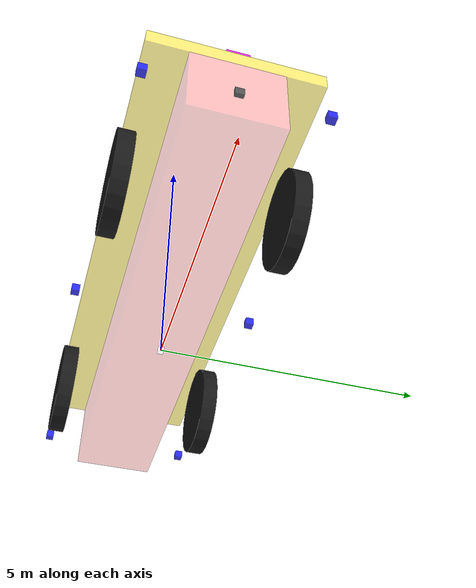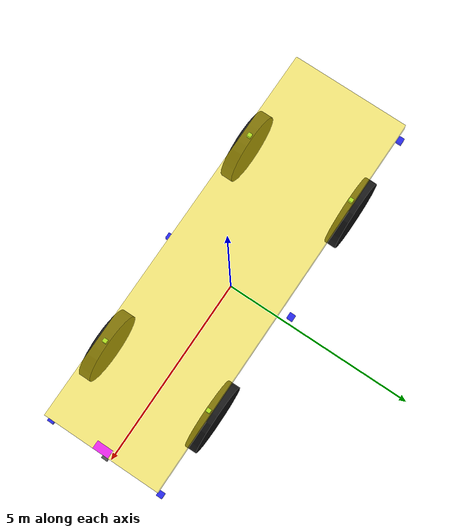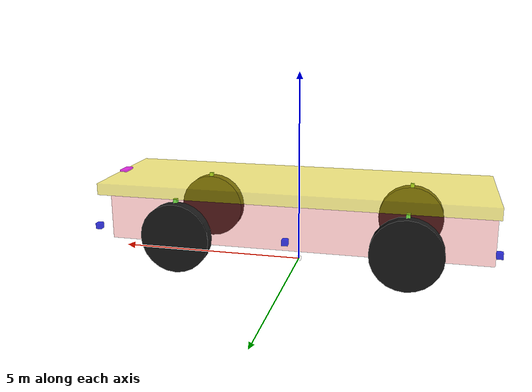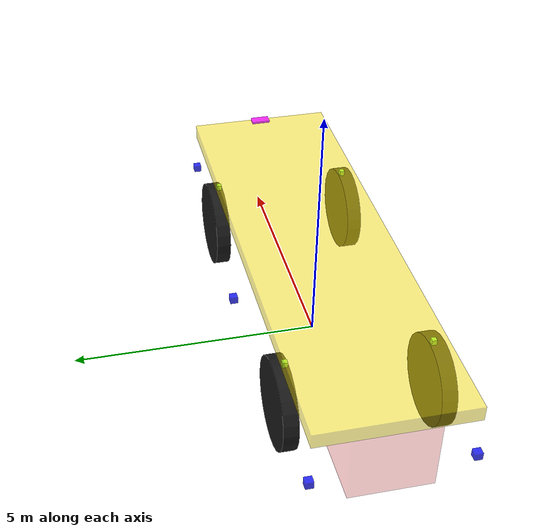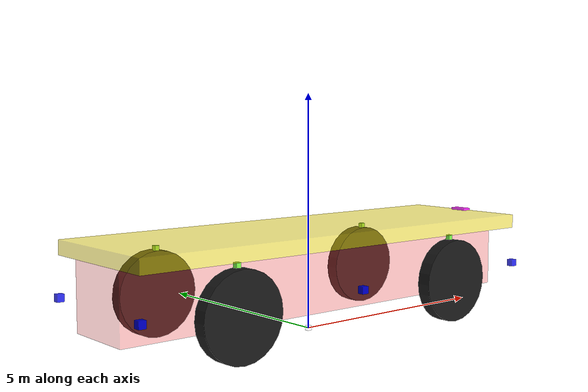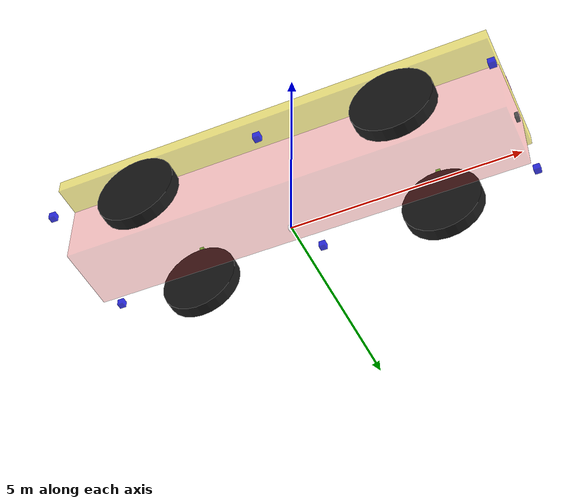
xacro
<?xml version="1.0"?>

<!-- Robot name -->
<robot name="agv" xmlns:xacro="http://www.ros.org/wiki/xacro">

<!-- Included URDF Files -->
<xacro:include filename="$(find agv_gazebo)/gazebo/agv_at_iri.gazebo" />
<xacro:include filename="$(find arts_description)/urdf/arts.xacro" />

<!-- user input dimensions  ( DEBUG: all mass values have been divided by 100 )  -->
<xacro:property name="robot"    value="agv" />
<xacro:property name="pi"       value="3.141592" />
<xacro:property name="body_length"   value="10." />
<xacro:property name="body_width"    value="1.6" />
<xacro:property name="body_height"   value="1.4" />
<xacro:property name="body_mass"   value="1000." />
<xacro:property name="platform_length"   value="${body_length}" />
<xacro:property name="platform_width"   value="3." />
<xacro:property name="platform_height"   value=".3" />
<xacro:property name="platform_mass"   value="500." />
<xacro:property name="wheel_width"    value="0.05" />
<xacro:property name="wheel_width_vis"    value="0.3" />
<xacro:property name="wheel_radius"   value="0.9" />
<xacro:property name="wheel_mass"   value="100." />
<xacro:property name="wheel_hinge_width"   value="0.1" />
<xacro:property name="wheel_hinge_mass"   value="10." />
<xacro:property name="lidar_mass"   value="1." />
<xacro:property name="lidar_side"   value="0.15" />

<!-- TNO definitions -->

<!-- derived dimensions -->
<xacro:property name="wheel_hinge_height"   value="${wheel_radius+0.1}" />
<xacro:property name="body_floor_clearance"   value="${wheel_radius+wheel_hinge_height-body_height}" />

<!-- ~~~~~~~~~~~~~~~~~~~~~~~ BODY AND PLATFORM ~~~~~~~~~~~~~~~~~~~~~~~~~~~~~~~~~~~~~~~~ -->

<!-- AGV Footprint Link (AGV footprint on ground)-->
<link name="${robot}_footprint">
    <visual>
        <origin xyz="0 0 0" rpy="0 0 0"/>
        <geometry>
            <box size="0.1 0.1 0.1"/>
        </geometry>
        <material name="white">
            <color rgba="1 1 1 0.1"/>
        </material>
    </visual>

<!--    Comment collision below for normal mode: wheels on te ground -->
<!--    Uncomment collision below for "Podium" mode: Useful to check wheel control without moving agv -->
</link>

<!-- AGV Base Link (AGV body)-->
<joint name="${robot}_footprint_2_base" type="fixed" >
    <parent link="${robot}_footprint"/>
    <child link="${robot}_base_link"/>
    <origin xyz="0 0 ${body_floor_clearance+0.5*body_height}" rpy="0 0 0"/>
</joint>
<link name="${robot}_base_link">
    <visual>
        <origin xyz="0 0 0" rpy="0 0 0"/>
        <geometry>
            <box size="${body_length} ${body_width} ${body_height}"/>
        </geometry>
        <material name="reddish">
            <color rgba="1 0.2 0.2 0.3"/>
        </material>
    </visual>

    <collision>
        <origin xyz="0 0 0" rpy="0 0 0"/>
        <geometry>
            <box size="${body_length} ${body_width} ${body_height}"/>
        </geometry>
    </collision>

    <inertial>
        <mass value="${body_mass}" />
        <origin xyz="0 0 0" rpy="0 0 0"/>
        <inertia ixx="${0.083*body_mass*(body_width*body_width+body_height*body_height)}"
                 ixy="0.0"
                 ixz="0.0"
                 iyy="${0.083*body_mass*(body_length*body_length+body_height*body_height)}"
                 iyz="0.0"
                 izz="${0.083*body_mass*(body_length*body_length+body_width*body_width)}" />
    </inertial>
</link>

<!-- AGV top platform-->
<joint name="${robot}_base_2_platform" type="fixed" >
    <parent link="${robot}_base_link"/>
    <child link="${robot}_platform"/>
    <origin xyz="0 0 ${0.5*body_height + 0.5*platform_height}" rpy="0 0 0"/>
</joint>
<link name="${robot}_platform">
    <visual>
        <origin xyz="0 0 0" rpy="0 0 0"/>
        <geometry>
            <box size="${platform_length} ${platform_width} ${platform_height}"/>
        </geometry>
        <material name="yellow">
            <color rgba="1.0 0.9 0.0 0.5"/>
        </material>
    </visual>

    <collision>
        <origin xyz="0 0 0" rpy="0 0 0"/>
        <geometry>
            <box size="${platform_length} ${platform_width} ${platform_height}"/>
        </geometry>
    </collision>

    <inertial>
        <mass value="${platform_mass}" />
        <origin xyz="0 0 0" rpy="0 0 0"/>
        <inertia ixx="${0.083*platform_mass*(platform_width*platform_width+platform_height*platform_height)}"
                    ixy="0.0"
                    ixz="0.0"
                    iyy="${0.083*platform_mass*(platform_length*platform_length+platform_height*platform_height)}"
                    iyz="0.0"
                    izz="${0.083*platform_mass*(platform_length*platform_length+platform_width*platform_width)}" />
    </inertial>
</link>

<!-- AGV forward marker -->
<joint name="${robot}_platform_2_fwd_mark" type="fixed" >
    <parent link="${robot}_platform"/>
    <child link="${robot}_fwd_mark"/>
    <origin xyz="${0.5*platform_length-0.1} 0 ${0.5*platform_height+0.025}" rpy="0 0 0"/>
</joint>
<link name="${robot}_fwd_mark">
    <visual>
        <origin xyz="0 0 0" rpy="0 0 0"/>
        <geometry>
            <box size="0.2 0.4 0.05"/>
        </geometry>
        <material name="purple">
            <color rgba="1.0 0.0 1.0 0.8"/>
        </material>
    </visual>

    <inertial>
        <mass value="0.01" />
        <origin xyz="0 0 0" rpy="0 0 0"/>
        <inertia ixx="0.01"
                ixy="0.0"
                ixz="0.0"
                iyy="0.01"
                iyz="0.0"
                izz="0.01" />
    </inertial>
</link>

<!-- ~~~~~~~~~~~~~~~~~~~~~~~~~~~~~~ WHEELS ~~~~~~~~~~~~~~~~~~~~~~~~~~~~~~~~~~~~~~~~~~~~ -->

<!-- front left hinge-->
<joint name="${robot}_platform_2_fl_hinge" type="revolute" >
    <parent link="${robot}_platform"/>
    <child link="${robot}_fl_hinge"/>
    <axis xyz="0 0 1"/>
    <limit effort="100000." lower="${-0.3*pi}" upper="${0.3*pi}" velocity="1."/>
    <dynamics damping="100."/>
    <origin xyz="${0.4*platform_length-wheel_radius-0.2} ${0.5*platform_width-0.5*wheel_hinge_width-wheel_width} ${-0.5*platform_height-0.5*wheel_hinge_height}" rpy="0 0 0"/>
</joint>
<link name="${robot}_fl_hinge">
    <visual>
        <origin xyz="0 0 0" rpy="0 0 0"/>
        <geometry>
            <box size="${wheel_hinge_width} ${wheel_hinge_width} ${wheel_hinge_height}"/>
        </geometry>
        <material name="green2">
            <color rgba="0.5 1 0.3 1"/>
        </material>
    </visual>

    <inertial>
        <mass value="${wheel_hinge_mass}" />
        <origin xyz="0 0 0" rpy="0 0 0"/>
        <inertia ixx="${0.083*wheel_hinge_mass*(wheel_hinge_width*wheel_hinge_width+wheel_hinge_height*wheel_hinge_height)}"
                    ixy="0.0"
                    ixz="0.0"
                    iyy="${0.083*wheel_hinge_mass*(wheel_hinge_width*wheel_hinge_width+wheel_hinge_height*wheel_hinge_height)}"
                    iyz="0.0"
                    izz="${0.083*wheel_hinge_mass*(wheel_hinge_width*wheel_hinge_width+wheel_hinge_width*wheel_hinge_width)}" />
    </inertial>

</link>

<!-- front left wheel-->
<joint name="${robot}_fl_hinge_2_wheel" type="continuous" >
    <parent link="${robot}_fl_hinge"/>
    <child link="${robot}_fl_wheel"/>
    <axis xyz="0 0 1"/>
    <limit effort="100000." velocity="${pi}"/>
    <dynamics damping="0.2"/>
    <origin xyz="0 ${0.5*wheel_hinge_width+0.5*wheel_width} ${-0.5*wheel_hinge_height}" rpy="${-0.5*pi} 0 0"/>
</joint>
<link name="${robot}_fl_wheel">
    <visual>
        <origin xyz="0 0 0" rpy="0 0 0"/>
        <geometry>
            <cylinder length="${wheel_width_vis}" radius="${wheel_radius}"/>
        </geometry>
        <material name="grey">
            <color rgba="0.1 0.1 0.1 1"/>
        </material>
    </visual>

    <collision>
        <origin xyz="0 0 0" rpy="0 0 0"/>
        <geometry>
            <cylinder length="${wheel_width}" radius="${wheel_radius}"/>
        </geometry>
    </collision>

    <inertial>
        <mass value="${wheel_mass}" />
        <origin xyz="0 0 0" rpy="0 0 0"/>
        <inertia ixx="${0.083*wheel_mass*(3*wheel_radius*wheel_radius+wheel_width*wheel_width)}"
                    ixy="0.0"
                    ixz="0.0"
                    iyy="${0.083*wheel_mass*(3*wheel_radius*wheel_radius+wheel_width*wheel_width)}"
                    iyz="0.0"
                    izz="${0.5*wheel_mass*wheel_radius*wheel_radius}" />
    </inertial>
</link>

<!-- front right hinge-->
<joint name="${robot}_platform_2_fr_hinge" type="revolute" >
    <parent link="${robot}_platform"/>
    <child link="${robot}_fr_hinge"/>
    <axis xyz="0 0 1"/>
    <limit effort="100000." lower="${-0.3*pi}" upper="${0.3*pi}" velocity="1."/>
    <dynamics damping="100."/>
    <origin xyz="${0.4*platform_length-wheel_radius-0.2} ${-0.5*platform_width+0.5*wheel_hinge_width+wheel_width} ${-0.5*platform_height-0.5*wheel_hinge_height}" rpy="0 0 0"/>
</joint>
<link name="${robot}_fr_hinge">
    <visual>
        <origin xyz="0 0 0" rpy="0 0 0"/>
        <geometry>
            <box size="${wheel_hinge_width} ${wheel_hinge_width} ${wheel_hinge_height}"/>
        </geometry>
        <material name="green2">
            <color rgba="0.5 1 0.3 1"/>
        </material>
    </visual>

    <inertial>
        <mass value="${wheel_hinge_mass}" />
        <origin xyz="0 0 0" rpy="0 0 0"/>
        <inertia ixx="${0.083*wheel_hinge_mass*(wheel_hinge_width*wheel_hinge_width+wheel_hinge_height*wheel_hinge_height)}"
                    ixy="0.0"
                    ixz="0.0"
                    iyy="${0.083*wheel_hinge_mass*(wheel_hinge_width*wheel_hinge_width+wheel_hinge_height*wheel_hinge_height)}"
                    iyz="0.0"
                    izz="${0.083*wheel_hinge_mass*(wheel_hinge_width*wheel_hinge_width+wheel_hinge_width*wheel_hinge_width)}" />
    </inertial>

</link>

<!-- front right wheel-->
<joint name="${robot}_fr_hinge_2_wheel" type="continuous" >
    <parent link="${robot}_fr_hinge"/>
    <child link="${robot}_fr_wheel"/>
    <axis xyz="0 0 1"/>
    <limit effort="100000." velocity="${pi}"/>
    <dynamics damping="0.2"/>
    <origin xyz="0 ${-0.5*wheel_hinge_width-0.5*wheel_width} ${-0.5*wheel_hinge_height}" rpy="${-0.5*pi} 0 0"/>
</joint>
<link name="${robot}_fr_wheel">
    <visual>
        <origin xyz="0 0 0" rpy="0 0 0"/>
        <geometry>
            <cylinder length="${wheel_width_vis}" radius="${wheel_radius}"/>
        </geometry>
        <material name="grey">
            <color rgba="0.1 0.1 0.1 1"/>
        </material>
    </visual>

    <collision>
        <origin xyz="0 0 0" rpy="0 0 0"/>
        <geometry>
            <cylinder length="${wheel_width}" radius="${wheel_radius}"/>
        </geometry>
    </collision>

    <inertial>
        <mass value="${wheel_mass}" />
        <origin xyz="0 0 0" rpy="0 0 0"/>
        <inertia ixx="${0.083*wheel_mass*(3*wheel_radius*wheel_radius+wheel_width*wheel_width)}"
                    ixy="0.0"
                    ixz="0.0"
                    iyy="${0.083*wheel_mass*(3*wheel_radius*wheel_radius+wheel_width*wheel_width)}"
                    iyz="0.0"
                    izz="${0.5*wheel_mass*wheel_radius*wheel_radius}" />
    </inertial>
</link>

<!-- back left hinge-->
<joint name="${robot}_platform_2_bl_hinge" type="revolute" >
    <parent link="${robot}_platform"/>
    <child link="${robot}_bl_hinge"/>
    <axis xyz="0 0 1"/>
    <limit effort="100000." lower="${-0.3*pi}" upper="${0.3*pi}" velocity="1."/>
    <dynamics damping="100."/>
    <origin xyz="${-0.4*platform_length+wheel_radius+0.2} ${0.5*platform_width-0.5*wheel_hinge_width-wheel_width} ${-0.5*platform_height-0.5*wheel_hinge_height}" rpy="0 0 0"/>
</joint>
<link name="${robot}_bl_hinge">
    <visual>
        <origin xyz="0 0 0" rpy="0 0 0"/>
        <geometry>
            <box size="${wheel_hinge_width} ${wheel_hinge_width} ${wheel_hinge_height}"/>
        </geometry>
        <material name="green2">
            <color rgba="0.5 1 0.3 1"/>
        </material>
    </visual>

    <inertial>
        <mass value="${wheel_hinge_mass}" />
        <origin xyz="0 0 0" rpy="0 0 0"/>
        <inertia ixx="${0.083*wheel_hinge_mass*(wheel_hinge_width*wheel_hinge_width+wheel_hinge_height*wheel_hinge_height)}"
                    ixy="0.0"
                    ixz="0.0"
                    iyy="${0.083*wheel_hinge_mass*(wheel_hinge_width*wheel_hinge_width+wheel_hinge_height*wheel_hinge_height)}"
                    iyz="0.0"
                    izz="${0.083*wheel_hinge_mass*(wheel_hinge_width*wheel_hinge_width+wheel_hinge_width*wheel_hinge_width)}" />
    </inertial>
</link>

<!-- back left wheel-->
<joint name="${robot}_bl_hinge_2_wheel" type="continuous" >
    <parent link="${robot}_bl_hinge"/>
    <child link="${robot}_bl_wheel"/>
    <axis xyz="0 0 1"/>
    <limit effort="100000." velocity="${pi}"/>
    <dynamics damping="0.2"/>
    <origin xyz="0 ${0.5*wheel_hinge_width+0.5*wheel_width} ${-0.5*wheel_hinge_height}" rpy="${-0.5*pi} 0 0"/>
</joint>
<link name="${robot}_bl_wheel">
    <visual>
        <origin xyz="0 0 0" rpy="0 0 0"/>
        <geometry>
            <cylinder length="${wheel_width_vis}" radius="${wheel_radius}"/>
        </geometry>
        <material name="grey">
            <color rgba="0.1 0.1 0.1 1"/>
        </material>
    </visual>

    <collision>
        <origin xyz="0 0 0" rpy="0 0 0"/>
        <geometry>
            <cylinder length="${wheel_width}" radius="${wheel_radius}"/>
        </geometry>
    </collision>

    <inertial>
        <mass value="${wheel_mass}" />
        <origin xyz="0 0 0" rpy="0 0 0"/>
        <inertia ixx="${0.083*wheel_mass*(3*wheel_radius*wheel_radius+wheel_width*wheel_width)}"
                    ixy="0.0"
                    ixz="0.0"
                    iyy="${0.083*wheel_mass*(3*wheel_radius*wheel_radius+wheel_width*wheel_width)}"
                    iyz="0.0"
                    izz="${0.5*wheel_mass*wheel_radius*wheel_radius}" />
    </inertial>
</link>

<!-- back right hinge-->
<joint name="${robot}_platform_2_br_hinge" type="revolute" >
    <parent link="${robot}_platform"/>
    <child link="${robot}_br_hinge"/>
    <axis xyz="0 0 1"/>
    <limit effort="100000." lower="${-0.3*pi}" upper="${0.3*pi}" velocity="1."/>
    <dynamics damping="100."/>
    <origin xyz="${-0.4*platform_length+wheel_radius+0.2} ${-0.5*platform_width+0.5*wheel_hinge_width+wheel_width} ${-0.5*platform_height-0.5*wheel_hinge_height}" rpy="0 0 0"/>
</joint>
<link name="${robot}_br_hinge">
    <visual>
        <origin xyz="0 0 0" rpy="0 0 0"/>
        <geometry>
            <box size="${wheel_hinge_width} ${wheel_hinge_width} ${wheel_hinge_height}"/>
        </geometry>
        <material name="green2">
            <color rgba="0.5 1 0.3 1"/>
        </material>
    </visual>

    <inertial>
        <mass value="${wheel_hinge_mass}" />
        <origin xyz="0 0 0" rpy="0 0 0"/>
        <inertia ixx="${0.083*wheel_hinge_mass*(wheel_hinge_width*wheel_hinge_width+wheel_hinge_height*wheel_hinge_height)}"
                    ixy="0.0"
                    ixz="0.0"
                    iyy="${0.083*wheel_hinge_mass*(wheel_hinge_width*wheel_hinge_width+wheel_hinge_height*wheel_hinge_height)}"
                    iyz="0.0"
                    izz="${0.083*wheel_hinge_mass*(wheel_hinge_width*wheel_hinge_width+wheel_hinge_width*wheel_hinge_width)}" />
    </inertial>
</link>

<!-- back right wheel-->
<joint name="${robot}_br_hinge_2_wheel" type="continuous" >
    <parent link="${robot}_br_hinge"/>
    <child link="${robot}_br_wheel"/>
    <axis xyz="0 0 1"/>
    <limit effort="100000." velocity="${pi}"/>
    <dynamics damping="0.2"/>
    <origin xyz="0 ${-0.5*wheel_hinge_width-0.5*wheel_width} ${-0.5*wheel_hinge_height}" rpy="${-0.5*pi} 0 0"/>
</joint>
<link name="${robot}_br_wheel">
    <visual>
        <origin xyz="0 0 0" rpy="0 0 0"/>
        <geometry>
            <cylinder length="${wheel_width_vis}" radius="${wheel_radius}"/>
        </geometry>
        <material name="grey">
            <color rgba="0.1 0.1 0.1 1"/>
        </material>
    </visual>

    <collision>
        <origin xyz="0 0 0" rpy="0 0 0"/>
        <geometry>
            <cylinder length="${wheel_width}" radius="${wheel_radius}"/>
        </geometry>
    </collision>

    <inertial>
        <mass value="${wheel_mass}" />
        <origin xyz="0 0 0" rpy="0 0 0"/>
        <inertia ixx="${0.083*wheel_mass*(3*wheel_radius*wheel_radius+wheel_width*wheel_width)}"
                    ixy="0.0"
                    ixz="0.0"
                    iyy="${0.083*wheel_mass*(3*wheel_radius*wheel_radius+wheel_width*wheel_width)}"
                    iyz="0.0"
                    izz="${0.5*wheel_mass*wheel_radius*wheel_radius}" />
    </inertial>
</link>

<!-- ~~~~~~~~~~~~~~~~~~~~~~~~~~~~~~ SENSORS ~~~~~~~~~~~~~~~~~~~~~~~~~~~~~~~~~~~~~~~~~~~ -->
<!--  central lidar -->
<joint name="${robot}_platform_2_ibeo" type="fixed" >
    <parent link="${robot}_platform"/>
    <child link="${robot}_ibeo"/>
    <origin xyz="${0.5*platform_length} 0.0 ${-0.7*body_height}" rpy="0 0 0"/>
</joint>
<link name="${robot}_ibeo">
    <visual>
        <origin xyz="0 0 0" rpy="0 0 0"/>
        <geometry>
            <box size="${lidar_side} ${lidar_side} ${lidar_side}"/>
        </geometry>
        <material name="grey">
            <color rgba="0.2 0.2 0.2 0.8"/>
        </material>
    </visual>

    <inertial>
        <mass value="${lidar_mass}" />
        <origin xyz="0 0 0" rpy="0 0 0"/>
        <inertia ixx="${0.083*lidar_mass*(2*lidar_side*lidar_side)}"
                ixy="0.0"
                ixz="0.0"
                iyy="${0.083*lidar_mass*(2*lidar_side*lidar_side)}"
                iyz="0.0"
                izz="${0.083*lidar_mass*(2*lidar_side*lidar_side)}" />
    </inertial>
</link>

<!--  front left lidar -->
<joint name="${robot}_platform_2_lidar0" type="fixed" >
    <parent link="${robot}_platform"/>
    <child link="${robot}_lidar0"/>
    <origin xyz="${0.5*platform_length} ${0.5*platform_width} ${-0.7*body_height}" rpy="0 0 0"/>
</joint>
<link name="${robot}_lidar0">
    <visual>
        <origin xyz="0 0 0" rpy="0 0 0"/>
        <geometry>
            <box size="${lidar_side} ${lidar_side} ${lidar_side}"/>
        </geometry>
        <material name="blue">
            <color rgba="0.0 0.0 1. 0.8"/>
        </material>
    </visual>

    <inertial>
        <mass value="${lidar_mass}" />
        <origin xyz="0 0 0" rpy="0 0 0"/>
        <inertia ixx="${0.083*lidar_mass*(2*lidar_side*lidar_side)}"
                ixy="0.0"
                ixz="0.0"
                iyy="${0.083*lidar_mass*(2*lidar_side*lidar_side)}"
                iyz="0.0"
                izz="${0.083*lidar_mass*(2*lidar_side*lidar_side)}" />
    </inertial>
</link>

<!--  front right lidar -->
<joint name="${robot}_platform_2_lidar1" type="fixed" >
    <parent link="${robot}_platform"/>
    <child link="${robot}_lidar1"/>
    <origin xyz="${0.5*platform_length} ${-0.5*platform_width} ${-0.7*body_height}" rpy="0 0 0"/>
</joint>
<link name="${robot}_lidar1">
    <visual>
        <origin xyz="0 0 0" rpy="0 0 0"/>
        <geometry>
            <box size="${lidar_side} ${lidar_side} ${lidar_side}"/>
        </geometry>
        <material name="blue">
            <color rgba="0.0 0.0 1. 0.8"/>
        </material>
    </visual>

    <inertial>
        <mass value="${lidar_mass}" />
        <origin xyz="0 0 0" rpy="0 0 0"/>
        <inertia ixx="${0.083*lidar_mass*(2*lidar_side*lidar_side)}"
                ixy="0.0"
                ixz="0.0"
                iyy="${0.083*lidar_mass*(2*lidar_side*lidar_side)}"
                iyz="0.0"
                izz="${0.083*lidar_mass*(2*lidar_side*lidar_side)}" />
    </inertial>
</link>

<!--  side left lidar -->
<joint name="${robot}_platform_2_lidar2" type="fixed" >
    <parent link="${robot}_platform"/>
    <child link="${robot}_lidar2"/>
    <origin xyz="0 ${0.5*platform_width+0.2} ${-0.7*body_height}" rpy="0 0 ${0.5*pi}"/>
</joint>
<link name="${robot}_lidar2">
    <visual>
        <origin xyz="0 0 0" rpy="0 0 0"/>
        <geometry>
            <box size="${lidar_side} ${lidar_side} ${lidar_side}"/>
        </geometry>
        <material name="blue">
            <color rgba="0.0 0.0 1. 0.8"/>
        </material>
    </visual>

    <inertial>
        <mass value="${lidar_mass}" />
        <origin xyz="0 0 0" rpy="0 0 0"/>
        <inertia ixx="${0.083*lidar_mass*(2*lidar_side*lidar_side)}"
                ixy="0.0"
                ixz="0.0"
                iyy="${0.083*lidar_mass*(2*lidar_side*lidar_side)}"
                iyz="0.0"
                izz="${0.083*lidar_mass*(2*lidar_side*lidar_side)}" />
    </inertial>
</link>

<!--  side right lidar -->
<joint name="${robot}_platform_2_lidar3" type="fixed" >
    <parent link="${robot}_platform"/>
    <child link="${robot}_lidar3"/>
    <origin xyz="0 ${-0.5*platform_width-0.2} ${-0.7*body_height}" rpy="0 0 ${-0.5*pi}"/>
</joint>
<link name="${robot}_lidar3">
    <visual>
        <origin xyz="0 0 0" rpy="0 0 0"/>
        <geometry>
            <box size="${lidar_side} ${lidar_side} ${lidar_side}"/>
        </geometry>
        <material name="blue">
            <color rgba="0.0 0.0 1. 0.8"/>
        </material>
    </visual>

    <inertial>
        <mass value="${lidar_mass}" />
        <origin xyz="0 0 0" rpy="0 0 0"/>
        <inertia ixx="${0.083*lidar_mass*(2*lidar_side*lidar_side)}"
                ixy="0.0"
                ixz="0.0"
                iyy="${0.083*lidar_mass*(2*lidar_side*lidar_side)}"
                iyz="0.0"
                izz="${0.083*lidar_mass*(2*lidar_side*lidar_side)}" />
    </inertial>
</link>

<!--  back left lidar -->
<joint name="${robot}_platform_2_lidar4" type="fixed" >
    <parent link="${robot}_platform"/>
    <child link="${robot}_lidar4"/>
    <origin xyz="${-0.5*platform_length} ${0.5*platform_width} ${-0.7*body_height}" rpy="0 0 ${pi}"/>
</joint>
<link name="${robot}_lidar4">
    <visual>
        <origin xyz="0 0 0" rpy="0 0 0"/>
        <geometry>
            <box size="${lidar_side} ${lidar_side} ${lidar_side}"/>
        </geometry>
        <material name="blue">
            <color rgba="0.0 0.0 1. 0.8"/>
        </material>
    </visual>

    <inertial>
        <mass value="${lidar_mass}" />
        <origin xyz="0 0 0" rpy="0 0 0"/>
        <inertia ixx="${0.083*lidar_mass*(2*lidar_side*lidar_side)}"
                ixy="0.0"
                ixz="0.0"
                iyy="${0.083*lidar_mass*(2*lidar_side*lidar_side)}"
                iyz="0.0"
                izz="${0.083*lidar_mass*(2*lidar_side*lidar_side)}" />
    </inertial>
</link>

<!--  back right lidar -->
<joint name="${robot}_platform_2_lidar5" type="fixed" >
    <parent link="${robot}_platform"/>
    <child link="${robot}_lidar5"/>
    <origin xyz="${-0.5*platform_length} ${-0.5*platform_width} ${-0.7*body_height}" rpy="0 0 ${pi}"/>
</joint>
<link name="${robot}_lidar5">
    <visual>
        <origin xyz="0 0 0" rpy="0 0 0"/>
        <geometry>
            <box size="${lidar_side} ${lidar_side} ${lidar_side}"/>
        </geometry>
        <material name="blue">
            <color rgba="0.0 0.0 1. 0.8"/>
        </material>
    </visual>

    <inertial>
        <mass value="${lidar_mass}" />
        <origin xyz="0 0 0" rpy="0 0 0"/>
        <inertia ixx="${0.083*lidar_mass*(2*lidar_side*lidar_side)}"
                ixy="0.0"
                ixz="0.0"
                iyy="${0.083*lidar_mass*(2*lidar_side*lidar_side)}"
                iyz="0.0"
                izz="${0.083*lidar_mass*(2*lidar_side*lidar_side)}" />
    </inertial>
</link>

<!-- ~~~~~~~~~~~~~~~~~~~~~~~~~~~~~~ TRANSMISSIONS ~~~~~~~~~~~~~~~~~~~~~~~~~~~~~~~~~~~~~~~~~~~ -->
<!-- front left steering -->
<transmission name="${robot}_fl_steer">
    <type>transmission_interface/SimpleTransmission</type>
    <joint name="${robot}_platform_2_fl_hinge">
        <hardwareInterface>EffortJointInterface</hardwareInterface>
    </joint>
    <actuator name="${robot}_fl_steer_motor">
        <hardwareInterface>EffortJointInterface</hardwareInterface>
        <mechanicalReduction>1</mechanicalReduction>
    </actuator>
</transmission>

<!-- front right steering -->
<transmission name="${robot}_fr_steer">
    <type>transmission_interface/SimpleTransmission</type>
    <joint name="${robot}_platform_2_fr_hinge">
        <hardwareInterface>EffortJointInterface</hardwareInterface>
    </joint>
    <actuator name="${robot}_fr_steer_motor">
        <hardwareInterface>EffortJointInterface</hardwareInterface>
        <mechanicalReduction>1</mechanicalReduction>
    </actuator>
</transmission>

<!-- back left steering -->
<transmission name="${robot}_bl_steer">
    <type>transmission_interface/SimpleTransmission</type>
    <joint name="${robot}_platform_2_bl_hinge">
        <hardwareInterface>EffortJointInterface</hardwareInterface>
    </joint>
    <actuator name="${robot}_bl_steer_motor">
        <hardwareInterface>EffortJointInterface</hardwareInterface>
        <mechanicalReduction>1</mechanicalReduction>
    </actuator>
</transmission>

<!-- back right steering -->
<transmission name="${robot}_br_steer">
    <type>transmission_interface/SimpleTransmission</type>
    <joint name="${robot}_platform_2_br_hinge">
        <hardwareInterface>EffortJointInterface</hardwareInterface>
    </joint>
    <actuator name="${robot}_br_steer_motor">
        <hardwareInterface>EffortJointInterface</hardwareInterface>
        <mechanicalReduction>1</mechanicalReduction>
    </actuator>
</transmission>

<!-- front left driving -->
<transmission name="${robot}_fl_drive">
    <type>transmission_interface/SimpleTransmission</type>
    <joint name="${robot}_fl_hinge_2_wheel">
        <hardwareInterface>EffortJointInterface</hardwareInterface>
    </joint>
    <actuator name="${robot}_fl_drive_motor">
        <hardwareInterface>EffortJointInterface</hardwareInterface>
        <mechanicalReduction>1</mechanicalReduction>
    </actuator>
</transmission>

<!-- front right driving -->
<transmission name="${robot}_fr_drive">
    <type>transmission_interface/SimpleTransmission</type>
    <joint name="${robot}_fr_hinge_2_wheel">
        <hardwareInterface>EffortJointInterface</hardwareInterface>
    </joint>
    <actuator name="${robot}_fr_drive_motor">
        <hardwareInterface>EffortJointInterface</hardwareInterface>
        <mechanicalReduction>1</mechanicalReduction>
    </actuator>
</transmission>

<!-- back left driving -->
<transmission name="${robot}_bl_drive">
    <type>transmission_interface/SimpleTransmission</type>
    <joint name="${robot}_bl_hinge_2_wheel">
        <hardwareInterface>EffortJointInterface</hardwareInterface>
    </joint>
    <actuator name="${robot}_bl_drive_motor">
        <hardwareInterface>EffortJointInterface</hardwareInterface>
        <mechanicalReduction>1</mechanicalReduction>
    </actuator>
</transmission>

<!-- back right driving -->
<transmission name="${robot}_br_drive">
    <type>transmission_interface/SimpleTransmission</type>
    <joint name="${robot}_br_hinge_2_wheel">
        <hardwareInterface>EffortJointInterface</hardwareInterface>
    </joint>
    <actuator name="${robot}_br_drive_motor">
        <hardwareInterface>EffortJointInterface</hardwareInterface>
        <mechanicalReduction>1</mechanicalReduction>
    </actuator>
</transmission>

</robot>
